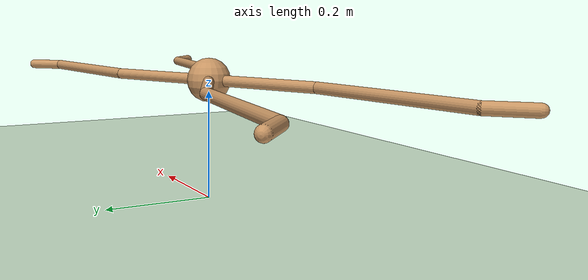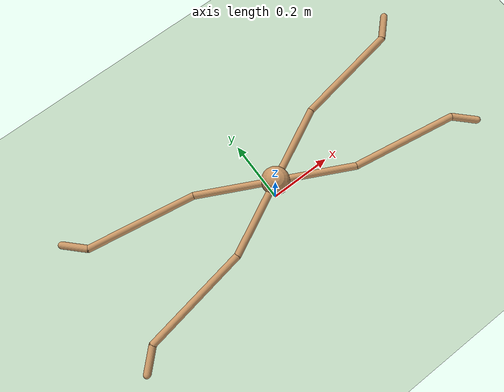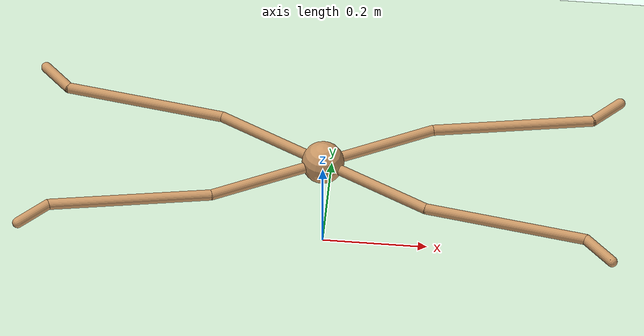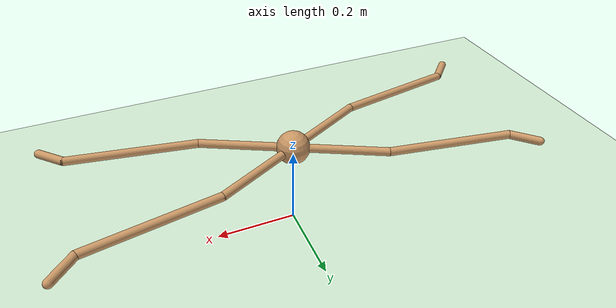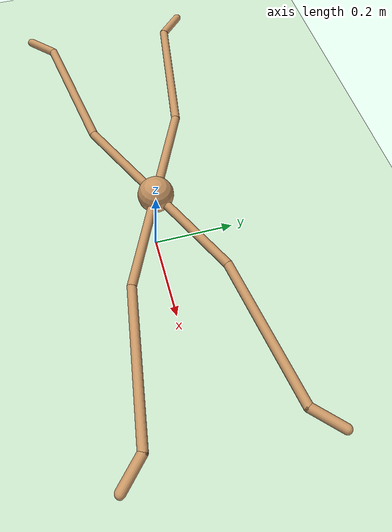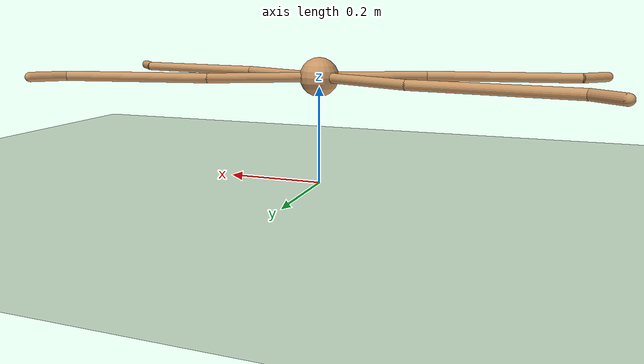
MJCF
<mujoco model="ant">
  <compiler angle="degree" coordinate="local" inertiafromgeom="true"/>
  <option integrator="RK4" timestep="0.01"/>
  <visual>
  <global offwidth="3840" offheight="2160"/>
  <map shadowscale=".05" />
  <quality shadowsize ="10000" />
  </visual>
  <custom>
    <numeric data="0.0 0.0 0.8711102550927979 1.0 0.0 0.0 0.0 0.0 1.0 0.0 -1.0 0.0 -1.0 0.0 1.0" name="init_qpos"/>
  </custom>
  <default>
    <joint armature="1" damping="1" limited="true"/>
    <geom conaffinity="0" condim="3" density="5.0" friction="1 0.5 0.5" margin="0.01" rgba="0.8 0.6 0.4 1"/>
  </default>
  <asset>
    <texture builtin="gradient" height="100" rgb1="1 1 1" rgb2="0 0 0" type="skybox" width="100"/>
    <texture builtin="flat" height="1278" mark="cross" markrgb="1 1 1" name="texgeom" random="0.01" rgb1="0.8 0.6 0.4" rgb2="0.8 0.6 0.4" type="cube" width="127"/>
    <texture builtin="checker" height="100" name="texplane" rgb1="0 0 0" rgb2="0.8 0.8 0.8" type="2d" width="100"/>
    <material name="MatPlane" reflectance="0.5" shininess="1" specular="1" texrepeat="60 60" texture="texplane"/>
    <material name="geom" texture="texgeom" texuniform="true"/>
  </asset>

  <worldbody>
    <light cutoff="100" diffuse="1 1 1" dir="-0 0 -1" directional="true" exponent="10" pos="0 0 5" specular=".1 .1 .1"  castshadow="false" />
    <light cutoff="200" diffuse=".3 .3 .3" dir="-1 -1 0" directional="true" exponent=".1" pos="3 3 0" specular=".1 .1 .1"  castshadow="true" />
    <geom conaffinity="1" condim="3" material="MatPlane" name="floor" pos="0 0 0" rgba="0.8 0.9 0.8 1" size="40 40 40" type="plane"/>
    <body name="torso" pos="0 0 0.22071067811865475">
      <camera name="track" mode="trackcom" pos="0 -3 0.3" xyaxes="1 0 0 0 0 1"/>
      <geom name="torso_geom" pos="0 0 0" size="0.04" type="sphere"/>
      <joint armature="0" damping="0" limited="false" margin="0.01" name="root" pos="0 0 0" type="free"/>
      <body name="front_left_leg" pos="0 0 0">
        <geom fromto="0.0 0.0 0.0 0.2 0.1 0.0" name="aux_1_geom" size="0.01" type="capsule"/>
        <body name="aux_1" pos="0.2 0.1 0">
          <joint axis="0 0 1" name="hip_1" pos="0.0 0.0 0.0" range="-40 40" type="hinge"/>
          <geom fromto="0.0 0.0 0.0 0.3 0.05 0.0" name="left_leg_geom" size="0.01" type="capsule" />
          <body pos="0.3 0.05 0" >
            <joint axis="-1 1 0" name="ankle_1" pos="0.0 0.0 0.0" range="30 100" type="hinge"/>
            <geom fromto="0.0 0.0 0.0 0.05 0.05 0.0" name="left_ankle_geom" size="0.01" type="capsule"/>
          </body>
        </body>
      </body>
      <body name="front_right_leg" pos="0 0 0">
        <geom fromto="0.0 0.0 0.0 -0.2 0.1 0.0" name="aux_2_geom" size="0.01" type="capsule"/>
        <body name="aux_2" pos="-0.2 0.1 0">
          <joint axis="0 0 1" name="hip_2" pos="0.0 0.0 0.0" range="-40 40" type="hinge"/>
          <geom fromto="0.0 0.0 0.0 -0.3 0.05 0.0" name="right_leg_geom" size="0.01" type="capsule"/>
          <body pos="-0.3 0.05 0" >
            <joint axis="1 1 0" name="ankle_2" pos="0.0 0.0 0.0" range="-100 -30" type="hinge"/>
            <geom fromto="0.0 0.0 0.0 -0.05 0.05 0.0" name="right_ankle_geom" size="0.01" type="capsule"/>
          </body>
        </body>
      </body>
      <body name="left_back_leg" pos="0 0 0">
        <geom fromto="0.0 0.0 0.0 -0.2 -0.1 0.0" name="aux_3_geom" size="0.01" type="capsule"/>
        <body name="aux_3" pos="-0.2 -0.1 0">
          <joint axis="0 0 1" name="hip_3" pos="0.0 0.0 0.0" range="-40 40" type="hinge"/>
          <geom fromto="0.0 0.0 0.0 -0.3 -0.05 0.0" name="back_leg_geom" size="0.01" type="capsule"/>
          <body pos="-0.3 -0.05 0" >
            <joint axis="-1 1 0" name="ankle_3" pos="0.0 0.0 0.0" range="-100 -30" type="hinge"/>
            <geom fromto="0.0 0.0 0.0 -0.05 -0.05 0.0" name="third_ankle_geom" size="0.01" type="capsule"/>
          </body>
        </body>
      </body>
      <body name="right_back_leg" pos="0 0 0">
        <geom fromto="0.0 0.0 0.0 0.2 -0.1 0.0" name="aux_4_geom" size="0.01" type="capsule"/>
        <body name="aux_4" pos=" 0.2 -0.1 0">
          <joint axis="0 0 1" name="hip_4" pos="0.0 0.0 0.0" range="-40 40" type="hinge"/>
          <geom fromto="0.0 0.0 0.0 0.3 -0.05 0.0" name="rightback_leg_geom" size="0.01" type="capsule"/>
          <body pos="0.3 -0.05 0" >
            <joint axis="1 1 0" name="ankle_4" pos="0.0 0.0 0.0" range="30 100" type="hinge"/>
            <geom fromto="0.0 0.0 0.0 0.05 -0.05 0.0" name="fourth_ankle_geom" size="0.01" type="capsule"/>
          </body>
        </body>
      </body>
    </body>
  </worldbody>

  <actuator>
    <motor ctrllimited="true" ctrlrange="-1.0 1.0" joint="hip_4" gear="150"/>
    <motor ctrllimited="true" ctrlrange="-1.0 1.0" joint="ankle_4" gear="150"/>
    <motor ctrllimited="true" ctrlrange="-1.0 1.0" joint="hip_1" gear="150"/>
    <motor ctrllimited="true" ctrlrange="-1.0 1.0" joint="ankle_1" gear="150"/>
    <motor ctrllimited="true" ctrlrange="-1.0 1.0" joint="hip_2" gear="150"/>
    <motor ctrllimited="true" ctrlrange="-1.0 1.0" joint="ankle_2" gear="150"/>
    <motor ctrllimited="true" ctrlrange="-1.0 1.0" joint="hip_3" gear="150"/>
    <motor ctrllimited="true" ctrlrange="-1.0 1.0" joint="ankle_3" gear="150"/>
  </actuator>
</mujoco>
